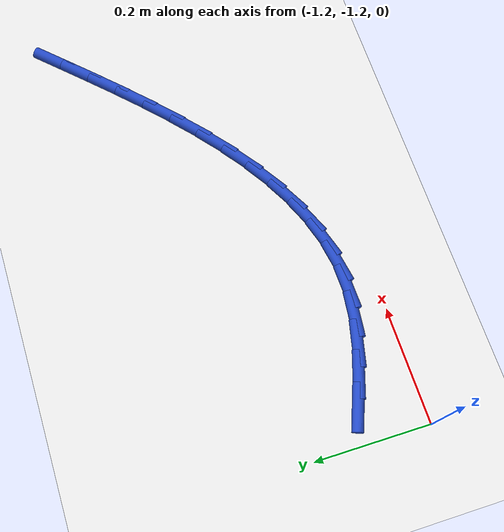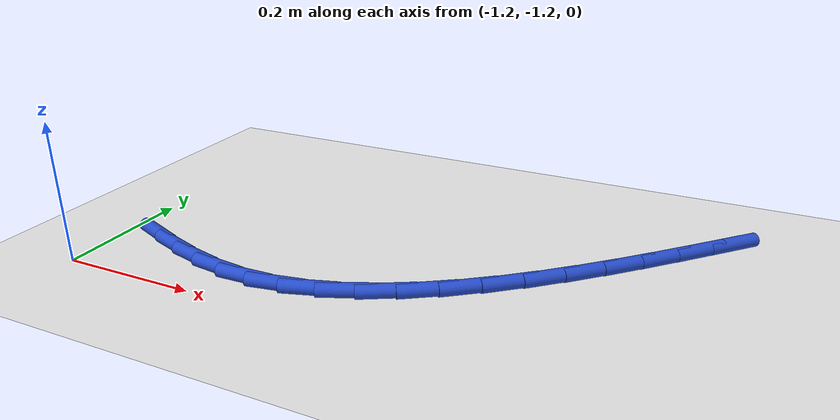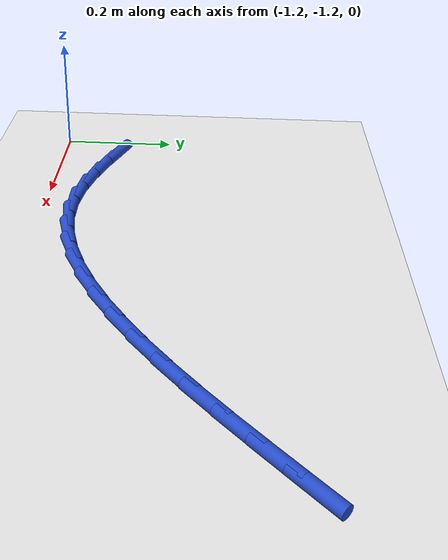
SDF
<sdf version="1.6">
 <world name="default">
  <model name="ground_plane">
   <static>1</static>
   <link name="link">
    <collision name="collision">
     <geometry><plane><normal>0 0 1</normal><size>100 100</size></plane></geometry>
     <surface><friction><ode><mu>100</mu><mu2>50</mu2></ode></friction></surface>
    </collision>
    <visual name="visual">
     <cast_shadows>0</cast_shadows>
     <geometry><plane><normal>0 0 1</normal><size>100 100</size></plane></geometry>
     <material>
      <script><uri>file://media/materials/scripts/gazebo.material</uri><name>Gazebo/WhiteGlow</name></script>
     </material>
    </visual>
   </link>
  </model>
  <model name="line">
   <link name="link_106">
    <pose>-1.140514340717796 -1.0953430776582318 0.01 0 1.57 -0.376830831770519</pose>
    <collision name="collision">
     <geometry><cylinder><radius>0.01</radius><length>0.08</length></cylinder></geometry>
    </collision>
    <visual name="visual">
     <material>
      <script><name>Gazebo/Blue</name><uri>file://media/materials/scripts/gazebo.material</uri></script>
     </material>
     <geometry><cylinder><radius>0.01</radius><length>0.08</length></cylinder></geometry>
    </visual>
   </link>
   <link name="link_107">
    <pose>-1.0913638642617352 -1.1147940153721543 0.01 0 1.57 -0.3215609414653473</pose>
    <collision name="collision">
     <geometry><cylinder><radius>0.01</radius><length>0.08</length></cylinder></geometry>
    </collision>
    <visual name="visual">
     <material>
      <script><name>Gazebo/Blue</name><uri>file://media/materials/scripts/gazebo.material</uri></script>
     </material>
     <geometry><cylinder><radius>0.01</radius><length>0.08</length></cylinder></geometry>
    </visual>
   </link>
   <link name="link_108">
    <pose>-1.0426842860550007 -1.1310102862252078 0.01 0 1.57 -0.2379158745320847</pose>
    <collision name="collision">
     <geometry><cylinder><radius>0.01</radius><length>0.08</length></cylinder></geometry>
    </collision>
    <visual name="visual">
     <material>
      <script><name>Gazebo/Blue</name><uri>file://media/materials/scripts/gazebo.material</uri></script>
     </material>
     <geometry><cylinder><radius>0.01</radius><length>0.08</length></cylinder></geometry>
    </visual>
   </link>
   <link name="link_109">
    <pose>-0.9944604210104802 -1.142705002188906 0.01 0 1.57 -0.12256922470481064</pose>
    <collision name="collision">
     <geometry><cylinder><radius>0.01</radius><length>0.08</length></cylinder></geometry>
    </collision>
    <visual name="visual">
     <material>
      <script><name>Gazebo/Blue</name><uri>file://media/materials/scripts/gazebo.material</uri></script>
     </material>
     <geometry><cylinder><radius>0.01</radius><length>0.08</length></cylinder></geometry>
    </visual>
   </link>
   <link name="link_110">
    <pose>-0.9466770840410628 -1.1485912752347627 0.01 0 1.57 0.022584424736565658</pose>
    <collision name="collision">
     <geometry><cylinder><radius>0.01</radius><length>0.08</length></cylinder></geometry>
    </collision>
    <visual name="visual">
     <material>
      <script><name>Gazebo/Blue</name><uri>file://media/materials/scripts/gazebo.material</uri></script>
     </material>
     <geometry><cylinder><radius>0.01</radius><length>0.08</length></cylinder></geometry>
    </visual>
   </link>
   <link name="link_111">
    <pose>-0.8993228463949753 -1.1475216251519362 0.01 0 1.57 0.16854990420681834</pose>
    <collision name="collision">
     <geometry><cylinder><radius>0.01</radius><length>0.08</length></cylinder></geometry>
    </collision>
    <visual name="visual">
     <material>
      <script><name>Gazebo/Blue</name><uri>file://media/materials/scripts/gazebo.material</uri></script>
     </material>
     <geometry><cylinder><radius>0.01</radius><length>0.08</length></cylinder></geometry>
    </visual>
   </link>
   <link name="link_112">
    <pose>-0.8524183865245636 -1.1395401573716477 0.01 0 1.57 0.2977583195917949</pose>
    <collision name="collision">
     <geometry><cylinder><radius>0.01</radius><length>0.08</length></cylinder></geometry>
    </collision>
    <visual name="visual">
     <material>
      <script><name>Gazebo/Blue</name><uri>file://media/materials/scripts/gazebo.material</uri></script>
     </material>
     <geometry><cylinder><radius>0.01</radius><length>0.08</length></cylinder></geometry>
    </visual>
   </link>
   <link name="link_113">
    <pose>-0.8060006691885039 -1.1252954064343812 0.01 0 1.57 0.4083100182146323</pose>
    <collision name="collision">
     <geometry><cylinder><radius>0.01</radius><length>0.08</length></cylinder></geometry>
    </collision>
    <visual name="visual">
     <material>
      <script><name>Gazebo/Blue</name><uri>file://media/materials/scripts/gazebo.material</uri></script>
     </material>
     <geometry><cylinder><radius>0.01</radius><length>0.08</length></cylinder></geometry>
    </visual>
   </link>
   <link name="link_114">
    <pose>-0.760106786586697 -1.1054406365708849 0.01 0 1.57 0.5007814553976948</pose>
    <collision name="collision">
     <geometry><cylinder><radius>0.01</radius><length>0.08</length></cylinder></geometry>
    </collision>
    <visual name="visual">
     <material>
      <script><name>Gazebo/Blue</name><uri>file://media/materials/scripts/gazebo.material</uri></script>
     </material>
     <geometry><cylinder><radius>0.01</radius><length>0.08</length></cylinder></geometry>
    </visual>
   </link>
   <link name="link_115">
    <pose>-0.7147738309190409 -1.080629112011907 0.01 0 1.57 0.5769612471474815</pose>
    <collision name="collision">
     <geometry><cylinder><radius>0.01</radius><length>0.08</length></cylinder></geometry>
    </collision>
    <visual name="visual">
     <material>
      <script><name>Gazebo/Blue</name><uri>file://media/materials/scripts/gazebo.material</uri></script>
     </material>
     <geometry><cylinder><radius>0.01</radius><length>0.08</length></cylinder></geometry>
    </visual>
   </link>
   <link name="link_116">
    <pose>-0.6700388943854353 -1.0515140969881955 0.01 0 1.57 0.6389924644230329</pose>
    <collision name="collision">
     <geometry><cylinder><radius>0.01</radius><length>0.08</length></cylinder></geometry>
    </collision>
    <visual name="visual">
     <material>
      <script><name>Gazebo/Blue</name><uri>file://media/materials/scripts/gazebo.material</uri></script>
     </material>
     <geometry><cylinder><radius>0.01</radius><length>0.08</length></cylinder></geometry>
    </visual>
   </link>
   <link name="link_117">
    <pose>-0.6259390691857782 -1.0187488557304973 0.01 0 1.57 0.6889007810380587</pose>
    <collision name="collision">
     <geometry><cylinder><radius>0.01</radius><length>0.08</length></cylinder></geometry>
    </collision>
    <visual name="visual">
     <material>
      <script><name>Gazebo/Blue</name><uri>file://media/materials/scripts/gazebo.material</uri></script>
     </material>
     <geometry><cylinder><radius>0.01</radius><length>0.08</length></cylinder></geometry>
    </visual>
   </link>
   <link name="link_118">
    <pose>-0.582511447519971 -0.9829866524695623 0.01 0 1.57 0.7283926371575664</pose>
    <collision name="collision">
     <geometry><cylinder><radius>0.01</radius><length>0.08</length></cylinder></geometry>
    </collision>
    <visual name="visual">
     <material>
      <script><name>Gazebo/Blue</name><uri>file://media/materials/scripts/gazebo.material</uri></script>
     </material>
     <geometry><cylinder><radius>0.01</radius><length>0.08</length></cylinder></geometry>
    </visual>
   </link>
   <link name="link_119">
    <pose>-0.5397931215879114 -0.9448807514361371 0.01 0 1.57 0.7587975005524858</pose>
    <collision name="collision">
     <geometry><cylinder><radius>0.01</radius><length>0.08</length></cylinder></geometry>
    </collision>
    <visual name="visual">
     <material>
      <script><name>Gazebo/Blue</name><uri>file://media/materials/scripts/gazebo.material</uri></script>
     </material>
     <geometry><cylinder><radius>0.01</radius><length>0.08</length></cylinder></geometry>
    </visual>
   </link>
   <link name="link_120">
    <pose>-0.49782118358949884 -0.9050844168609705 0.01 0 1.57 0.7810706423856036</pose>
    <collision name="collision">
     <geometry><cylinder><radius>0.01</radius><length>0.08</length></cylinder></geometry>
    </collision>
    <visual name="visual">
     <material>
      <script><name>Gazebo/Blue</name><uri>file://media/materials/scripts/gazebo.material</uri></script>
     </material>
     <geometry><cylinder><radius>0.01</radius><length>0.08</length></cylinder></geometry>
    </visual>
   </link>
   <link name="link_121">
    <pose>-0.45663272572463265 -0.8642509129748103 0.01 0 1.57 0.7958104900206904</pose>
    <collision name="collision">
     <geometry><cylinder><radius>0.01</radius><length>0.08</length></cylinder></geometry>
    </collision>
    <visual name="visual">
     <material>
      <script><name>Gazebo/Blue</name><uri>file://media/materials/scripts/gazebo.material</uri></script>
     </material>
     <geometry><cylinder><radius>0.01</radius><length>0.08</length></cylinder></geometry>
    </visual>
   </link>
   <link name="link_122">
    <pose>-0.4162648401932113 -0.8230335040084035 0.01 0 1.57 0.8032667525877409</pose>
    <collision name="collision">
     <geometry><cylinder><radius>0.01</radius><length>0.08</length></cylinder></geometry>
    </collision>
    <visual name="visual">
     <material>
      <script><name>Gazebo/Blue</name><uri>file://media/materials/scripts/gazebo.material</uri></script>
     </material>
     <geometry><cylinder><radius>0.01</radius><length>0.08</length></cylinder></geometry>
    </visual>
   </link>
   <link name="link_123">
    <pose>-0.37675461919513537 -0.7820854541925 0.01 0 1.57 0.8057637326833205</pose>
    <collision name="collision">
     <geometry><cylinder><radius>0.01</radius><length>0.08</length></cylinder></geometry>
    </collision>
    <visual name="visual">
     <material>
      <script><name>Gazebo/Blue</name><uri>file://media/materials/scripts/gazebo.material</uri></script>
     </material>
     <geometry><cylinder><radius>0.01</radius><length>0.08</length></cylinder></geometry>
    </visual>
   </link>
  </model>
 </world>
</sdf>
